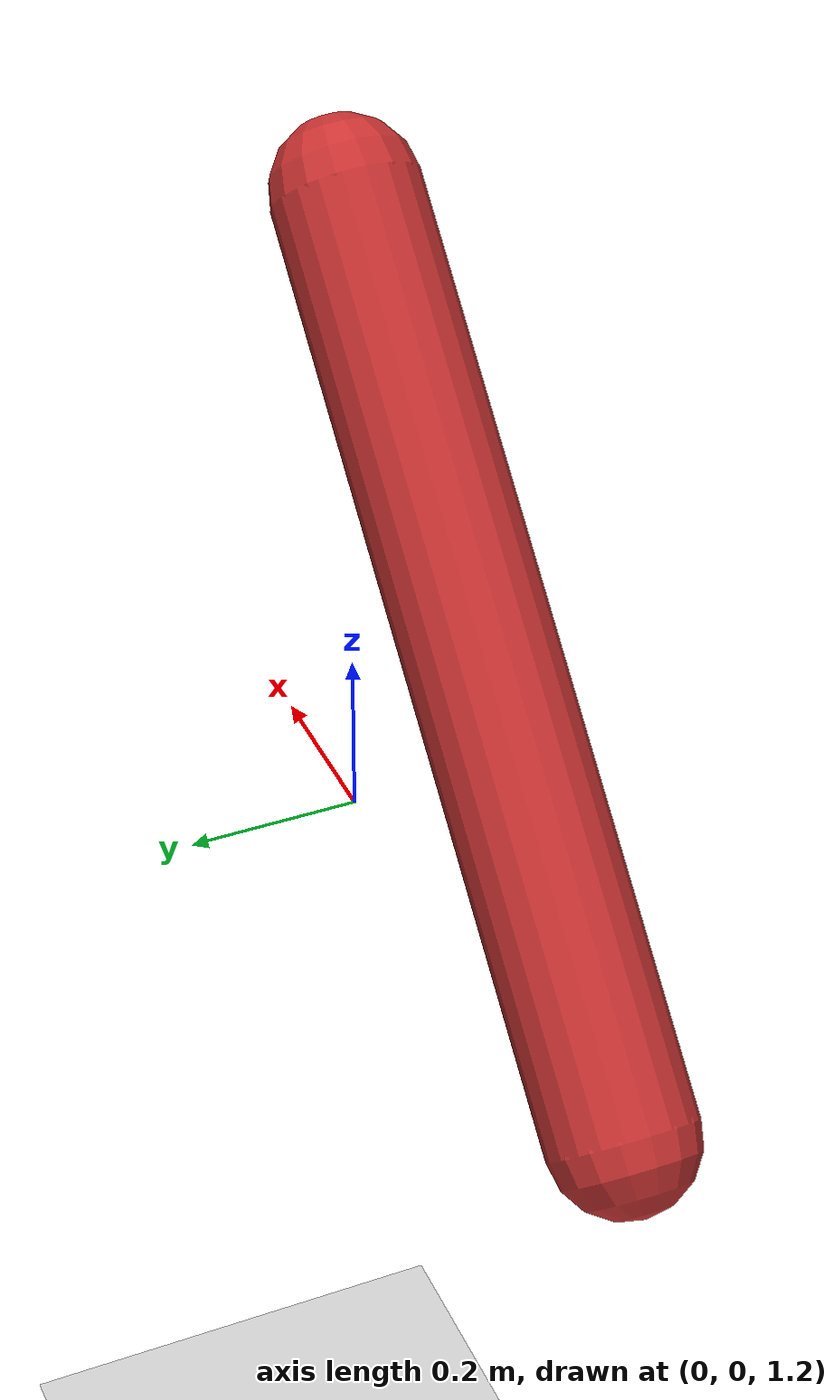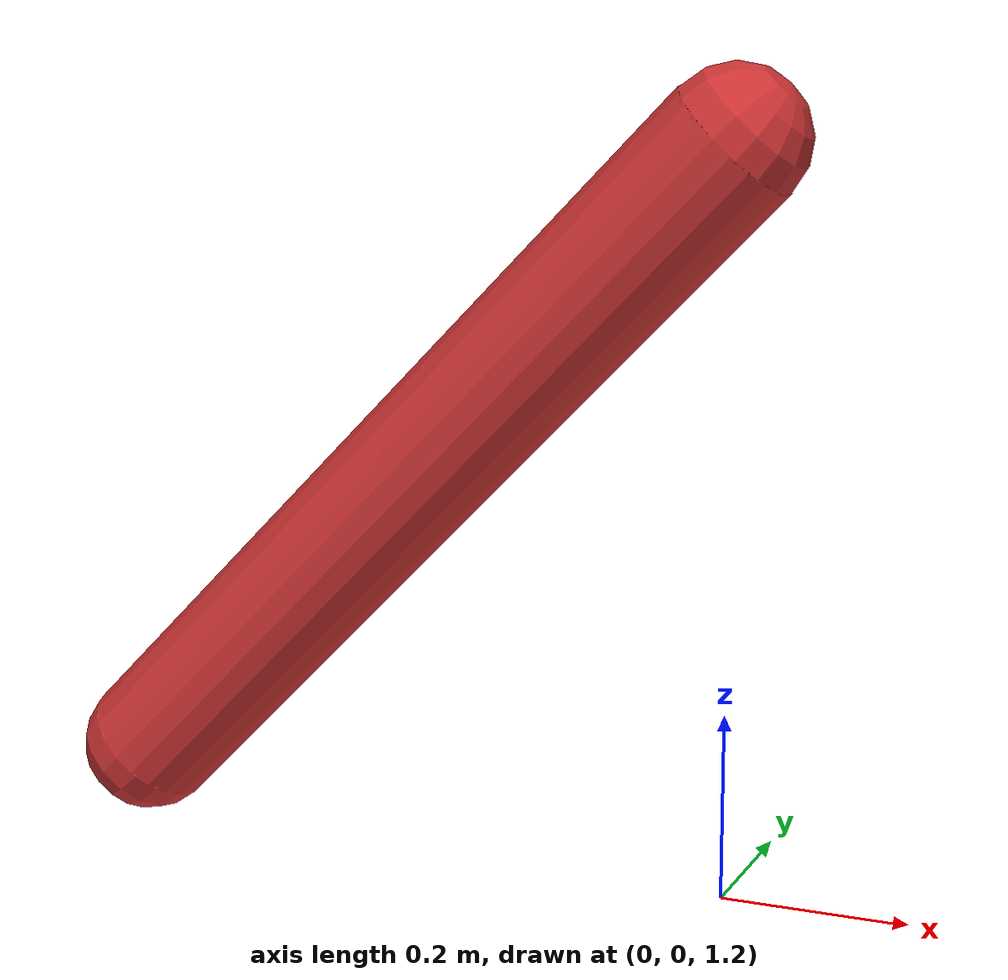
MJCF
<mujoco model="Simple Pendulum">

    <compiler angle="degree" autolimits="true"/>

    <option timestep="0.002"
            gravity="0 0 -9.81"/>

    <worldbody>

        <geom type="plane"
              size="5 5 0.1"
              rgba="0.8 0.8 0.8 1"/>

        <body name="pendulum"
              pos="0 0 2"
              euler="0 45 0">

            <joint name="pivot"
                   type="hinge"
                   pos="0 0 0"
                   axis="0 1 0"
                   range="-90 90"
                   damping="0.05"/>

            <geom type="capsule"
                  fromto="0 0 0  0 0 -1"
                  size="0.08"
                  mass="1"
                  rgba="0.8 0.2 0.2 1"/>

        </body>

    </worldbody>

</mujoco>
